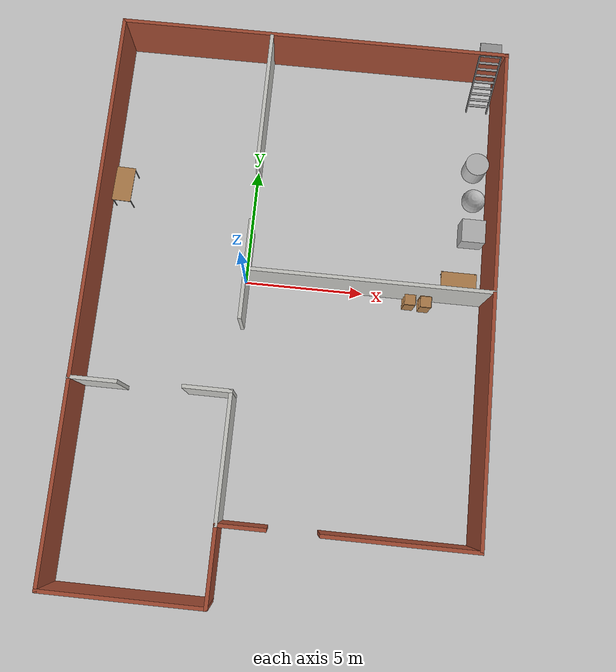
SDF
<sdf version="1.6">
 <world name="default">
  <model name="ground_plane">
   <static>1</static>
   <link name="link">
    <collision name="collision">
     <geometry><plane><normal>0 0 1</normal><size>100 100</size></plane></geometry>
     <surface><friction><ode><mu>100</mu><mu2>50</mu2></ode></friction></surface>
    </collision>
    <visual name="visual">
     <cast_shadows>0</cast_shadows>
     <geometry><plane><normal>0 0 1</normal><size>100 100</size></plane></geometry>
     <material>
      <script><uri>file://media/materials/scripts/gazebo.material</uri><name>Gazebo/Grey</name></script>
     </material>
    </visual>
   </link>
  </model>
  <model name="Building">
   <pose>1.88689 -1.28718 0 0 -0 0</pose>
   <link name="Wall_30">
    <collision name="Wall_30_Collision">
     <geometry><box><size>10.15 0.15 2.5</size></box></geometry>
     <pose>0 0 1.25 0 -0 0</pose>
    </collision>
    <visual name="Wall_30_Visual">
     <pose>0 0 1.25 0 -0 0</pose>
     <geometry><box><size>10.15 0.15 2.5</size></box></geometry>
     <material>
      <script><uri>file://media/materials/scripts/gazebo.material</uri><name>Gazebo/CeilingTiled</name></script>
      <ambient>0.203922 0.396078 0.643137 1</ambient>
     </material>
     <meta><layer>0</layer></meta>
    </visual>
    <pose>3.18412 1.325 0 0 -0 0</pose>
   </link>
   <link name="Wall_34">
    <collision name="Wall_34_Collision">
     <geometry><box><size>10.15 0.15 2.5</size></box></geometry>
     <pose>0 0 1.25 0 -0 0</pose>
    </collision>
    <visual name="Wall_34_Visual">
     <pose>0 0 1.25 0 -0 0</pose>
     <geometry><box><size>10.15 0.15 2.5</size></box></geometry>
     <material>
      <script><uri>file://media/materials/scripts/gazebo.material</uri><name>Gazebo/Bricks</name></script>
      <ambient>1 1 1 1</ambient>
     </material>
     <meta><layer>0</layer></meta>
    </visual>
    <pose>8.18412 -3.675 0 0 -0 -1.5708</pose>
   </link>
   <link name="Wall_36">
    <collision name="Wall_36_Collision">
     <geometry><box><size>6.15 0.15 2.5</size></box></geometry>
     <pose>0 0 1.25 0 -0 0</pose>
    </collision>
    <visual name="Wall_36_Visual">
     <pose>0 0 1.25 0 -0 0</pose>
     <geometry><box><size>6.15 0.15 2.5</size></box></geometry>
     <material>
      <script><uri>file://media/materials/scripts/gazebo.material</uri><name>Gazebo/Bricks</name></script>
      <ambient>1 1 1 1</ambient>
     </material>
     <meta><layer>0</layer></meta>
    </visual>
    <pose>5.18412 -8.675 0 0 -0 3.14159</pose>
   </link>
   <link name="Wall_38">
    <collision name="Wall_38_Collision">
     <geometry><box><size>5.2029 0.15 2.5</size></box></geometry>
     <pose>0 0 1.25 0 -0 0</pose>
    </collision>
    <visual name="Wall_38_Visual">
     <pose>0 0 1.25 0 -0 0</pose>
     <geometry><box><size>5.2029 0.15 2.5</size></box></geometry>
     <material>
      <script><uri>file://media/materials/scripts/gazebo.material</uri><name>Gazebo/CeilingTiled</name></script>
      <ambient>0.203922 0.396078 0.643137 1</ambient>
     </material>
     <meta><layer>0</layer></meta>
    </visual>
    <pose>-1.81588 -6.14855 0 0 -0 1.5708</pose>
   </link>
   <link name="Wall_40">
    <collision name="Wall_40_Collision">
     <geometry><box><size>2 0.15 2.5</size></box></geometry>
     <pose>0 0 1.25 0 -0 0</pose>
    </collision>
    <visual name="Wall_40_Visual">
     <pose>0 0 1.25 0 -0 0</pose>
     <geometry><box><size>2 0.15 2.5</size></box></geometry>
     <material>
      <script><uri>file://media/materials/scripts/gazebo.material</uri><name>Gazebo/Bricks</name></script>
      <ambient>1 1 1 1</ambient>
     </material>
     <meta><layer>0</layer></meta>
    </visual>
    <pose>-0.890877 -8.675 0 0 -0 0</pose>
   </link>
   <link name="Wall_42">
    <collision name="Wall_42_Collision">
     <geometry><box><size>3.15 0.15 2.5</size></box></geometry>
     <pose>0 0 1.25 0 -0 0</pose>
    </collision>
    <visual name="Wall_42_Visual">
     <pose>0 0 1.25 0 -0 0</pose>
     <geometry><box><size>3.15 0.15 2.5</size></box></geometry>
     <material>
      <script><uri>file://media/materials/scripts/gazebo.material</uri><name>Gazebo/Bricks</name></script>
      <ambient>1 1 1 1</ambient>
     </material>
     <meta><layer>0</layer></meta>
    </visual>
    <pose>-1.81588 -10.175 0 0 -0 -1.5708</pose>
   </link>
   <link name="Wall_44">
    <collision name="Wall_44_Collision">
     <geometry><box><size>6.5 0.15 2.5</size></box></geometry>
     <pose>0 0 1.25 0 -0 0</pose>
    </collision>
    <visual name="Wall_44_Visual">
     <pose>0 0 1.25 0 -0 0</pose>
     <geometry><box><size>6.5 0.15 2.5</size></box></geometry>
     <material>
      <script><uri>file://media/materials/scripts/gazebo.material</uri><name>Gazebo/Bricks</name></script>
      <ambient>1 1 1 1</ambient>
     </material>
     <meta><layer>0</layer></meta>
    </visual>
    <pose>-4.99088 -11.675 0 0 -0 3.14159</pose>
   </link>
   <link name="Wall_45">
    <collision name="Wall_45_Collision">
     <geometry><box><size>23.5 0.15 2.5</size></box></geometry>
     <pose>0 0 1.25 0 -0 0</pose>
    </collision>
    <visual name="Wall_45_Visual">
     <pose>0 0 1.25 0 -0 0</pose>
     <geometry><box><size>23.5 0.15 2.5</size></box></geometry>
     <material>
      <script><uri>file://media/materials/scripts/gazebo.material</uri><name>Gazebo/Bricks</name></script>
      <ambient>1 1 1 1</ambient>
     </material>
     <meta><layer>0</layer></meta>
    </visual>
    <pose>-8.16588 0 0 0 -0 1.5708</pose>
   </link>
   <link name="Wall_47">
    <collision name="Wall_47_Collision">
     <geometry><box><size>2.15 0.15 2.5</size></box></geometry>
     <pose>0 0 1.25 0 -0 0</pose>
    </collision>
    <visual name="Wall_47_Visual">
     <pose>0 0 1.25 0 -0 0</pose>
     <geometry><box><size>2.15 0.15 2.5</size></box></geometry>
     <material>
      <script><uri>file://media/materials/scripts/gazebo.material</uri><name>Gazebo/CeilingTiled</name></script>
      <ambient>0.203922 0.396078 0.643137 1</ambient>
     </material>
     <meta><layer>0</layer></meta>
    </visual>
    <pose>-1.81588 0.325 0 0 -0 1.5708</pose>
   </link>
   <link name="Wall_49">
    <collision name="Wall_49_Collision">
     <geometry><box><size>2 0.15 2.5</size></box></geometry>
     <pose>0 0 1.25 0 -0 0</pose>
    </collision>
    <visual name="Wall_49_Visual">
     <pose>0 0 1.25 0 -0 0</pose>
     <geometry><box><size>2 0.15 2.5</size></box></geometry>
     <material>
      <script><uri>file://media/materials/scripts/gazebo.material</uri><name>Gazebo/CeilingTiled</name></script>
      <ambient>0.203922 0.396078 0.643137 1</ambient>
     </material>
     <meta><layer>0</layer></meta>
    </visual>
    <pose>-7.25912 -3.70088 0 0 -0 0</pose>
   </link>
   <link name="Wall_51">
    <collision name="Wall_51_Collision">
     <geometry><box><size>2 0.15 2.5</size></box></geometry>
     <pose>0 0 1.25 0 -0 0</pose>
    </collision>
    <visual name="Wall_51_Visual">
     <pose>0 0 1.25 0 -0 0</pose>
     <geometry><box><size>2 0.15 2.5</size></box></geometry>
     <material>
      <script><uri>file://media/materials/scripts/gazebo.material</uri><name>Gazebo/CeilingTiled</name></script>
      <ambient>0.203922 0.396078 0.643137 1</ambient>
     </material>
     <meta><layer>0</layer></meta>
    </visual>
    <pose>-2.74088 -3.6221 0 0 -0 3.14159</pose>
   </link>
   <link name="Wall_53">
    <collision name="Wall_53_Collision">
     <geometry><box><size>2.15 0.15 2.5</size></box></geometry>
     <pose>0 0 1.25 0 -0 0</pose>
    </collision>
    <visual name="Wall_53_Visual">
     <pose>0 0 1.25 0 -0 0</pose>
     <geometry><box><size>2.15 0.15 2.5</size></box></geometry>
     <material>
      <script><uri>file://media/materials/scripts/gazebo.material</uri><name>Gazebo/CeilingTiled</name></script>
      <ambient>0.203922 0.396078 0.643137 1</ambient>
     </material>
     <meta><layer>0</layer></meta>
    </visual>
    <pose>-1.81588 2.325 0 0 -0 1.5708</pose>
   </link>
   <link name="Wall_55">
    <collision name="Wall_55_Collision">
     <geometry><box><size>16.5 0.15 2.5</size></box></geometry>
     <pose>0 0 1.25 0 -0 0</pose>
    </collision>
    <visual name="Wall_55_Visual">
     <pose>0 0 1.25 0 -0 0</pose>
     <geometry><box><size>16.5 0.15 2.5</size></box></geometry>
     <material>
      <script><uri>file://media/materials/scripts/gazebo.material</uri><name>Gazebo/Bricks</name></script>
      <ambient>1 1 1 1</ambient>
     </material>
     <meta><layer>0</layer></meta>
    </visual>
    <pose>0.009123 11.675 0 0 -0 0</pose>
   </link>
   <link name="Wall_57">
    <collision name="Wall_57_Collision">
     <geometry><box><size>10.5 0.15 2.5</size></box></geometry>
     <pose>0 0 1.25 0 -0 0</pose>
    </collision>
    <visual name="Wall_57_Visual">
     <pose>0 0 1.25 0 -0 0</pose>
     <geometry><box><size>10.5 0.15 2.5</size></box></geometry>
     <material>
      <script><uri>file://media/materials/scripts/gazebo.material</uri><name>Gazebo/Bricks</name></script>
      <ambient>1 1 1 1</ambient>
     </material>
     <meta><layer>0</layer></meta>
    </visual>
    <pose>8.18412 6.5 0 0 -0 1.5708</pose>
   </link>
   <link name="Wall_59">
    <collision name="Wall_59_Collision">
     <geometry><box><size>5.9 0.15 2.5</size></box></geometry>
     <pose>0 0 1.25 0 -0 0</pose>
    </collision>
    <visual name="Wall_59_Visual">
     <pose>0 0 1.25 0 -0 0</pose>
     <geometry><box><size>5.9 0.15 2.5</size></box></geometry>
     <material>
      <script><uri>file://media/materials/scripts/gazebo.material</uri><name>Gazebo/CeilingTiled</name></script>
      <ambient>0.203922 0.396078 0.643137 1</ambient>
     </material>
     <meta><layer>0</layer></meta>
    </visual>
    <pose>-1.81588 8.7 0 0 -0 -1.5708</pose>
   </link>
   <static>1</static>
  </model>
  <model name="ladder_60deg_0rails">
   <static>1</static>
   <link name="step0">
    <pose>0 0.15396 0.266667 0 -0 0</pose>
    <inertial>
     <mass>9.75482</mass>
     <inertia>
      <ixx>0.00957124</ixx>
      <iyy>0.65963</iyy>
      <izz>0.666842</izz>
      <ixy>0</ixy>
      <ixz>0</ixz>
      <iyz>0</iyz>
     </inertia>
    </inertial>
    <collision name="collision"><geometry><box><size>0.9 0.1016 0.0381</size></box></geometry></collision>
    <visual name="visual">
     <geometry><box><size>0.9 0.1016 0.0381</size></box></geometry>
     <material>
      <script><uri>file://media/materials/scripts/gazebo.material</uri><name>Gazebo/Grey</name></script>
     </material>
    </visual>
   </link>
   <link name="step1">
    <pose>0 0.30792 0.533333 0 -0 0</pose>
    <inertial>
     <mass>9.75482</mass>
     <inertia>
      <ixx>0.00957124</ixx>
      <iyy>0.65963</iyy>
      <izz>0.666842</izz>
      <ixy>0</ixy>
      <ixz>0</ixz>
      <iyz>0</iyz>
     </inertia>
    </inertial>
    <collision name="collision"><geometry><box><size>0.9 0.1016 0.0381</size></box></geometry></collision>
    <visual name="visual">
     <geometry><box><size>0.9 0.1016 0.0381</size></box></geometry>
     <material>
      <script><uri>file://media/materials/scripts/gazebo.material</uri><name>Gazebo/Grey</name></script>
     </material>
    </visual>
   </link>
   <link name="step2">
    <pose>0 0.46188 0.8 0 -0 0</pose>
    <inertial>
     <mass>9.75482</mass>
     <inertia>
      <ixx>0.00957124</ixx>
      <iyy>0.65963</iyy>
      <izz>0.666842</izz>
      <ixy>0</ixy>
      <ixz>0</ixz>
      <iyz>0</iyz>
     </inertia>
    </inertial>
    <collision name="collision"><geometry><box><size>0.9 0.1016 0.0381</size></box></geometry></collision>
    <visual name="visual">
     <geometry><box><size>0.9 0.1016 0.0381</size></box></geometry>
     <material>
      <script><uri>file://media/materials/scripts/gazebo.material</uri><name>Gazebo/Grey</name></script>
     </material>
    </visual>
   </link>
   <link name="step3">
    <pose>0 0.61584 1.06667 0 -0 0</pose>
    <inertial>
     <mass>9.75482</mass>
     <inertia>
      <ixx>0.00957124</ixx>
      <iyy>0.65963</iyy>
      <izz>0.666842</izz>
      <ixy>0</ixy>
      <ixz>0</ixz>
      <iyz>0</iyz>
     </inertia>
    </inertial>
    <collision name="collision"><geometry><box><size>0.9 0.1016 0.0381</size></box></geometry></collision>
    <visual name="visual">
     <geometry><box><size>0.9 0.1016 0.0381</size></box></geometry>
     <material>
      <script><uri>file://media/materials/scripts/gazebo.material</uri><name>Gazebo/Grey</name></script>
     </material>
    </visual>
   </link>
   <link name="step4">
    <pose>0 0.7698 1.33333 0 -0 0</pose>
    <inertial>
     <mass>9.75482</mass>
     <inertia>
      <ixx>0.00957124</ixx>
      <iyy>0.65963</iyy>
      <izz>0.666842</izz>
      <ixy>0</ixy>
      <ixz>0</ixz>
      <iyz>0</iyz>
     </inertia>
    </inertial>
    <collision name="collision"><geometry><box><size>0.9 0.1016 0.0381</size></box></geometry></collision>
    <visual name="visual">
     <geometry><box><size>0.9 0.1016 0.0381</size></box></geometry>
     <material>
      <script><uri>file://media/materials/scripts/gazebo.material</uri><name>Gazebo/Grey</name></script>
     </material>
    </visual>
   </link>
   <link name="step5">
    <pose>0 0.92376 1.6 0 -0 0</pose>
    <inertial>
     <mass>9.75482</mass>
     <inertia>
      <ixx>0.00957124</ixx>
      <iyy>0.65963</iyy>
      <izz>0.666842</izz>
      <ixy>0</ixy>
      <ixz>0</ixz>
      <iyz>0</iyz>
     </inertia>
    </inertial>
    <collision name="collision"><geometry><box><size>0.9 0.1016 0.0381</size></box></geometry></collision>
    <visual name="visual">
     <geometry><box><size>0.9 0.1016 0.0381</size></box></geometry>
     <material>
      <script><uri>file://media/materials/scripts/gazebo.material</uri><name>Gazebo/Grey</name></script>
     </material>
    </visual>
   </link>
   <link name="step6">
    <pose>0 1.07772 1.86667 0 -0 0</pose>
    <inertial>
     <mass>9.75482</mass>
     <inertia>
      <ixx>0.00957124</ixx>
      <iyy>0.65963</iyy>
      <izz>0.666842</izz>
      <ixy>0</ixy>
      <ixz>0</ixz>
      <iyz>0</iyz>
     </inertia>
    </inertial>
    <collision name="collision"><geometry><box><size>0.9 0.1016 0.0381</size></box></geometry></collision>
    <visual name="visual">
     <geometry><box><size>0.9 0.1016 0.0381</size></box></geometry>
     <material>
      <script><uri>file://media/materials/scripts/gazebo.material</uri><name>Gazebo/Grey</name></script>
     </material>
    </visual>
   </link>
   <link name="step7">
    <pose>0 1.23168 2.13333 0 -0 0</pose>
    <inertial>
     <mass>9.75482</mass>
     <inertia>
      <ixx>0.00957124</ixx>
      <iyy>0.65963</iyy>
      <izz>0.666842</izz>
      <ixy>0</ixy>
      <ixz>0</ixz>
      <iyz>0</iyz>
     </inertia>
    </inertial>
    <collision name="collision"><geometry><box><size>0.9 0.1016 0.0381</size></box></geometry></collision>
    <visual name="visual">
     <geometry><box><size>0.9 0.1016 0.0381</size></box></geometry>
     <material>
      <script><uri>file://media/materials/scripts/gazebo.material</uri><name>Gazebo/Grey</name></script>
     </material>
    </visual>
   </link>
   <link name="landing">
    <pose>0 1.68564 2.4 0 -0 0</pose>
    <inertial>
     <mass>57.6072</mass>
     <inertia><ixx>1.73518</ixx><iyy>3.89545</iyy><izz>5.6167</izz><ixy>0</ixy><ixz>0</ixz><iyz>0</iyz></inertia>
    </inertial>
    <collision name="collision"><geometry><box><size>0.9 0.6 0.1016</size></box></geometry></collision>
    <visual name="visual">
     <geometry><box><size>0.9 0.6 0.1016</size></box></geometry>
     <material>
      <script><uri>file://media/materials/scripts/gazebo.material</uri><name>Gazebo/Grey</name></script>
     </material>
    </visual>
   </link>
   <link name="left_side_wall">
    <pose>-0.45 0.69282 1.2 1.0472 -0 0</pose>
    <collision name="collision"><geometry><box><size>0.0508 2.85128 0.13</size></box></geometry></collision>
    <visual name="visual">
     <geometry><box><size>0.0508 2.85128 0.13</size></box></geometry>
     <material>
      <script><uri>file://media/materials/scripts/gazebo.material</uri><name>Gazebo/Grey</name></script>
     </material>
    </visual>
   </link>
   <link name="right_side_wall">
    <pose>0.45 0.69282 1.2 1.0472 -0 0</pose>
    <collision name="collision"><geometry><box><size>0.0508 2.85128 0.13</size></box></geometry></collision>
    <visual name="visual">
     <geometry><box><size>0.0508 2.85128 0.13</size></box></geometry>
     <material>
      <script><uri>file://media/materials/scripts/gazebo.material</uri><name>Gazebo/Grey</name></script>
     </material>
    </visual>
   </link>
   <pose>9.39979 8.90239 0 0 -0 0</pose>
  </model>
  <model name="table">
   <static>1</static>
   <link name="link">
    <collision name="surface">
     <pose>0 0 1 0 -0 0</pose>
     <geometry><box><size>1.5 0.8 0.03</size></box></geometry>
     <surface><friction><ode><mu>0.6</mu><mu2>0.6</mu2></ode></friction></surface>
    </collision>
    <visual name="visual1">
     <pose>0 0 1 0 -0 0</pose>
     <geometry><box><size>1.5 0.8 0.03</size></box></geometry>
     <material>
      <script><uri>file://media/materials/scripts/gazebo.material</uri><name>Gazebo/Wood</name></script>
     </material>
    </visual>
    <collision name="front_left_leg">
     <pose>0.68 0.38 0.5 0 -0 0</pose>
     <geometry><cylinder><radius>0.02</radius><length>1</length></cylinder></geometry>
    </collision>
    <visual name="front_left_leg">
     <pose>0.68 0.38 0.5 0 -0 0</pose>
     <geometry><cylinder><radius>0.02</radius><length>1</length></cylinder></geometry>
     <material>
      <script><uri>file://media/materials/scripts/gazebo.material</uri><name>Gazebo/Grey</name></script>
     </material>
    </visual>
    <collision name="front_right_leg">
     <pose>0.68 -0.38 0.5 0 -0 0</pose>
     <geometry><cylinder><radius>0.02</radius><length>1</length></cylinder></geometry>
    </collision>
    <visual name="front_right_leg">
     <pose>0.68 -0.38 0.5 0 -0 0</pose>
     <geometry><cylinder><radius>0.02</radius><length>1</length></cylinder></geometry>
     <material>
      <script><uri>file://media/materials/scripts/gazebo.material</uri><name>Gazebo/Grey</name></script>
     </material>
    </visual>
    <collision name="back_right_leg">
     <pose>-0.68 -0.38 0.5 0 -0 0</pose>
     <geometry><cylinder><radius>0.02</radius><length>1</length></cylinder></geometry>
    </collision>
    <visual name="back_right_leg">
     <pose>-0.68 -0.38 0.5 0 -0 0</pose>
     <geometry><cylinder><radius>0.02</radius><length>1</length></cylinder></geometry>
     <material>
      <script><uri>file://media/materials/scripts/gazebo.material</uri><name>Gazebo/Grey</name></script>
     </material>
    </visual>
    <collision name="back_left_leg">
     <pose>-0.68 0.38 0.5 0 -0 0</pose>
     <geometry><cylinder><radius>0.02</radius><length>1</length></cylinder></geometry>
    </collision>
    <visual name="back_left_leg">
     <pose>-0.68 0.38 0.5 0 -0 0</pose>
     <geometry><cylinder><radius>0.02</radius><length>1</length></cylinder></geometry>
     <material>
      <script><uri>file://media/materials/scripts/gazebo.material</uri><name>Gazebo/Grey</name></script>
     </material>
    </visual>
   </link>
   <pose>-5.62223 3.56497 0 0 0 -1.598</pose>
  </model>
  <model name="cabinet">
   <static>1</static>
   <link name="cabinet_bottom_plate">
    <inertial>
     <pose>0 0 -1 0 -0 0</pose>
     <inertia><ixx>2.05</ixx><ixy>0</ixy><ixz>0</ixz><iyy>2.05</iyy><iyz>0</iyz><izz>2.05</izz></inertia>
     <mass>25</mass>
    </inertial>
    <collision name="cabinet_bottom_plate_geom">
     <pose>0 0 0.01 0 -0 0</pose>
     <geometry><box><size>0.45 0.45 0.02</size></box></geometry>
    </collision>
    <visual name="cabinet_bottom_plate_geom_visual">
     <pose>0 0 0.01 0 -0 0</pose>
     <geometry><box><size>0.45 0.45 0.02</size></box></geometry>
     <material>
      <script><uri>file://media/materials/scripts/gazebo.material</uri><name>Gazebo/Wood</name></script>
     </material>
    </visual>
    <collision name="cabinet_bottom_plate_geom_cabinet_back_plate">
     <pose>0.235 0 0.51 0 -0 0</pose>
     <geometry><box><size>0.02 0.45 1.02</size></box></geometry>
    </collision>
    <visual name="cabinet_bottom_plate_geom_cabinet_back_plate_visual">
     <pose>0.235 0 0.51 0 -0 0</pose>
     <geometry><box><size>0.02 0.45 1.02</size></box></geometry>
     <material>
      <script><uri>file://media/materials/scripts/gazebo.material</uri><name>Gazebo/Wood</name></script>
     </material>
    </visual>
    <collision name="cabinet_bottom_plate_geom_cabinet_left_plate">
     <pose>0 0.235 0.51 0 -0 0</pose>
     <geometry><box><size>0.45 0.02 1.02</size></box></geometry>
    </collision>
    <visual name="cabinet_bottom_plate_geom_cabinet_left_plate_visual">
     <pose>0 0.235 0.51 0 -0 0</pose>
     <geometry><box><size>0.45 0.02 1.02</size></box></geometry>
     <material>
      <script><uri>file://media/materials/scripts/gazebo.material</uri><name>Gazebo/Wood</name></script>
     </material>
    </visual>
    <collision name="cabinet_bottom_plate_geom_cabinet_middle_plate">
     <pose>0 0 0.51 0 -0 0</pose>
     <geometry><box><size>0.45 0.45 0.02</size></box></geometry>
    </collision>
    <visual name="cabinet_bottom_plate_geom_cabinet_middle_plate_visual">
     <pose>0 0 0.51 0 -0 0</pose>
     <geometry><box><size>0.45 0.45 0.02</size></box></geometry>
     <material>
      <script><uri>file://media/materials/scripts/gazebo.material</uri><name>Gazebo/Wood</name></script>
     </material>
    </visual>
    <collision name="cabinet_bottom_plate_geom_cabinet_right_plate">
     <pose>0 -0.235 0.51 0 -0 0</pose>
     <geometry><box><size>0.45 0.02 1.02</size></box></geometry>
    </collision>
    <visual name="cabinet_bottom_plate_geom_cabinet_right_plate_visual">
     <pose>0 -0.235 0.51 0 -0 0</pose>
     <geometry><box><size>0.45 0.02 1.02</size></box></geometry>
     <material>
      <script><uri>file://media/materials/scripts/gazebo.material</uri><name>Gazebo/Wood</name></script>
     </material>
    </visual>
    <collision name="cabinet_bottom_plate_geom_cabinet_top_plate">
     <pose>0 0 1.01 0 -0 0</pose>
     <geometry><box><size>0.45 0.45 0.02</size></box></geometry>
    </collision>
    <visual name="cabinet_bottom_plate_geom_cabinet_top_plate_visual">
     <pose>0 0 1.01 0 -0 0</pose>
     <geometry><box><size>0.45 0.45 0.02</size></box></geometry>
     <material>
      <script><uri>file://media/materials/scripts/gazebo.material</uri><name>Gazebo/Wood</name></script>
     </material>
    </visual>
   </link>
   <pose>7.57445 -0.283027 0 0 -0 0</pose>
  </model>
  <model name="minitable">
   <link name="link">
    <inertial>
     <mass>1</mass>
     <inertia><ixx>1</ixx><ixy>0</ixy><ixz>0</ixz><iyy>1</iyy><iyz>0</iyz><izz>1</izz></inertia>
    </inertial>
    <visual name="visual1">
     <pose>0 0 0.5 0 -0 0</pose>
     <geometry><box><size>1.5 0.8 0.03</size></box></geometry>
     <material>
      <script><uri>file://media/materials/scripts/gazebo.material</uri><name>Gazebo/Wood</name></script>
      <shader type="pixel"><normal_map>__default__</normal_map></shader>
      <ambient>1 1 1 1</ambient>
      <diffuse>1 1 1 1</diffuse>
      <specular>0.2 0.2 0.2 1</specular>
      <emissive>0 0 0 1</emissive>
     </material>
    </visual>
    <visual name="front_left_leg">
     <pose>0.68 0.38 0.05 0 -0 0</pose>
     <geometry><cylinder><radius>0.02</radius><length>1</length></cylinder></geometry>
     <material>
      <script><uri>file://media/materials/scripts/gazebo.material</uri><name>Gazebo/Grey</name></script>
      <shader type="pixel"><normal_map>__default__</normal_map></shader>
      <ambient>0.3 0.3 0.3 1</ambient>
      <diffuse>0.7 0.7 0.7 1</diffuse>
      <specular>0.01 0.01 0.01 1</specular>
      <emissive>0 0 0 1</emissive>
     </material>
    </visual>
    <visual name="front_right_leg">
     <pose>0.68 -0.38 0.05 0 -0 0</pose>
     <geometry><cylinder><radius>0.02</radius><length>1</length></cylinder></geometry>
     <material>
      <script><uri>file://media/materials/scripts/gazebo.material</uri><name>Gazebo/Grey</name></script>
      <shader type="pixel"><normal_map>__default__</normal_map></shader>
      <ambient>0.3 0.3 0.3 1</ambient>
      <diffuse>0.7 0.7 0.7 1</diffuse>
      <specular>0.01 0.01 0.01 1</specular>
      <emissive>0 0 0 1</emissive>
     </material>
    </visual>
    <visual name="back_right_leg">
     <pose>-0.68 -0.38 0.05 0 -0 0</pose>
     <geometry><cylinder><radius>0.02</radius><length>1</length></cylinder></geometry>
     <material>
      <script><uri>file://media/materials/scripts/gazebo.material</uri><name>Gazebo/Grey</name></script>
      <shader type="pixel"><normal_map>__default__</normal_map></shader>
      <ambient>0.3 0.3 0.3 1</ambient>
      <diffuse>0.7 0.7 0.7 1</diffuse>
      <specular>0.01 0.01 0.01 1</specular>
      <emissive>0 0 0 1</emissive>
     </material>
    </visual>
    <visual name="back_left_leg">
     <pose>-0.68 0.38 0.05 0 -0 0</pose>
     <geometry><cylinder><radius>0.02</radius><length>1</length></cylinder></geometry>
     <material>
      <script><uri>file://media/materials/scripts/gazebo.material</uri><name>Gazebo/Grey</name></script>
      <shader type="pixel"><normal_map>__default__</normal_map></shader>
      <ambient>0.3 0.3 0.3 1</ambient>
      <diffuse>0.7 0.7 0.7 1</diffuse>
      <specular>0.01 0.01 0.01 1</specular>
      <emissive>0 0 0 1</emissive>
     </material>
    </visual>
    <collision name="surface">
     <pose>0 0 0.5 0 -0 0</pose>
     <geometry><box><size>1.5 0.8 0.03</size></box></geometry>
     <surface>
      <friction>
       <ode><mu>0.6</mu><mu2>0.6</mu2><fdir1>0 0 0</fdir1><slip1>0</slip1><slip2>0</slip2></ode>
       <torsional>
        <coefficient>1</coefficient>
        <patch_radius>0</patch_radius>
        <surface_radius>0</surface_radius>
        <use_patch_radius>1</use_patch_radius>
        <ode><slip>0</slip></ode>
       </torsional>
      </friction>
      <bounce><restitution_coefficient>0</restitution_coefficient><threshold>1e+06</threshold></bounce>
      <contact>
       <collide_without_contact>0</collide_without_contact>
       <collide_without_contact_bitmask>1</collide_without_contact_bitmask>
       <collide_bitmask>1</collide_bitmask>
       <ode>
        <soft_cfm>0</soft_cfm>
        <soft_erp>0.2</soft_erp>
        <kp>1e+13</kp>
        <kd>1</kd>
        <max_vel>0.01</max_vel>
        <min_depth>0</min_depth>
       </ode>
       <bullet>
        <split_impulse>1</split_impulse>
        <split_impulse_penetration_threshold>-0.01</split_impulse_penetration_threshold>
        <soft_cfm>0</soft_cfm>
        <soft_erp>0.2</soft_erp>
        <kp>1e+13</kp>
        <kd>1</kd>
       </bullet>
      </contact>
     </surface>
    </collision>
    <collision name="front_left_leg">
     <pose>0.68 0.38 0.05 0 -0 0</pose>
     <geometry><cylinder><radius>0.02</radius><length>1</length></cylinder></geometry>
     <surface>
      <friction>
       <ode><mu>1</mu><mu2>1</mu2><fdir1>0 0 0</fdir1><slip1>0</slip1><slip2>0</slip2></ode>
       <torsional>
        <coefficient>1</coefficient>
        <patch_radius>0</patch_radius>
        <surface_radius>0</surface_radius>
        <use_patch_radius>1</use_patch_radius>
        <ode><slip>0</slip></ode>
       </torsional>
      </friction>
      <bounce><restitution_coefficient>0</restitution_coefficient><threshold>1e+06</threshold></bounce>
      <contact>
       <collide_without_contact>0</collide_without_contact>
       <collide_without_contact_bitmask>1</collide_without_contact_bitmask>
       <collide_bitmask>1</collide_bitmask>
       <ode>
        <soft_cfm>0</soft_cfm>
        <soft_erp>0.2</soft_erp>
        <kp>1e+13</kp>
        <kd>1</kd>
        <max_vel>0.01</max_vel>
        <min_depth>0</min_depth>
       </ode>
       <bullet>
        <split_impulse>1</split_impulse>
        <split_impulse_penetration_threshold>-0.01</split_impulse_penetration_threshold>
        <soft_cfm>0</soft_cfm>
        <soft_erp>0.2</soft_erp>
        <kp>1e+13</kp>
        <kd>1</kd>
       </bullet>
      </contact>
     </surface>
    </collision>
    <collision name="front_right_leg">
     <pose>0.68 -0.38 0.05 0 -0 0</pose>
     <geometry><cylinder><radius>0.02</radius><length>1</length></cylinder></geometry>
     <surface>
      <friction>
       <ode><mu>1</mu><mu2>1</mu2><fdir1>0 0 0</fdir1><slip1>0</slip1><slip2>0</slip2></ode>
       <torsional>
        <coefficient>1</coefficient>
        <patch_radius>0</patch_radius>
        <surface_radius>0</surface_radius>
        <use_patch_radius>1</use_patch_radius>
        <ode><slip>0</slip></ode>
       </torsional>
      </friction>
      <bounce><restitution_coefficient>0</restitution_coefficient><threshold>1e+06</threshold></bounce>
      <contact>
       <collide_without_contact>0</collide_without_contact>
       <collide_without_contact_bitmask>1</collide_without_contact_bitmask>
       <collide_bitmask>1</collide_bitmask>
       <ode>
        <soft_cfm>0</soft_cfm>
        <soft_erp>0.2</soft_erp>
        <kp>1e+13</kp>
        <kd>1</kd>
        <max_vel>0.01</max_vel>
        <min_depth>0</min_depth>
       </ode>
       <bullet>
        <split_impulse>1</split_impulse>
        <split_impulse_penetration_threshold>-0.01</split_impulse_penetration_threshold>
        <soft_cfm>0</soft_cfm>
        <soft_erp>0.2</soft_erp>
        <kp>1e+13</kp>
        <kd>1</kd>
       </bullet>
      </contact>
     </surface>
    </collision>
    <collision name="back_right_leg">
     <pose>-0.68 -0.38 0.05 0 -0 0</pose>
     <geometry><cylinder><radius>0.02</radius><length>1</length></cylinder></geometry>
     <surface>
      <friction>
       <ode><mu>1</mu><mu2>1</mu2><fdir1>0 0 0</fdir1><slip1>0</slip1><slip2>0</slip2></ode>
       <torsional>
        <coefficient>1</coefficient>
        <patch_radius>0</patch_radius>
        <surface_radius>0</surface_radius>
        <use_patch_radius>1</use_patch_radius>
        <ode><slip>0</slip></ode>
       </torsional>
      </friction>
      <bounce><restitution_coefficient>0</restitution_coefficient><threshold>1e+06</threshold></bounce>
      <contact>
       <collide_without_contact>0</collide_without_contact>
       <collide_without_contact_bitmask>1</collide_without_contact_bitmask>
       <collide_bitmask>1</collide_bitmask>
       <ode>
        <soft_cfm>0</soft_cfm>
        <soft_erp>0.2</soft_erp>
        <kp>1e+13</kp>
        <kd>1</kd>
        <max_vel>0.01</max_vel>
        <min_depth>0</min_depth>
       </ode>
       <bullet>
        <split_impulse>1</split_impulse>
        <split_impulse_penetration_threshold>-0.01</split_impulse_penetration_threshold>
        <soft_cfm>0</soft_cfm>
        <soft_erp>0.2</soft_erp>
        <kp>1e+13</kp>
        <kd>1</kd>
       </bullet>
      </contact>
     </surface>
    </collision>
    <collision name="back_left_leg">
     <pose>-0.68 0.38 0.05 0 -0 0</pose>
     <geometry><cylinder><radius>0.02</radius><length>1</length></cylinder></geometry>
     <surface>
      <friction>
       <ode><mu>1</mu><mu2>1</mu2><fdir1>0 0 0</fdir1><slip1>0</slip1><slip2>0</slip2></ode>
       <torsional>
        <coefficient>1</coefficient>
        <patch_radius>0</patch_radius>
        <surface_radius>0</surface_radius>
        <use_patch_radius>1</use_patch_radius>
        <ode><slip>0</slip></ode>
       </torsional>
      </friction>
      <bounce><restitution_coefficient>0</restitution_coefficient><threshold>1e+06</threshold></bounce>
      <contact>
       <collide_without_contact>0</collide_without_contact>
       <collide_without_contact_bitmask>1</collide_without_contact_bitmask>
       <collide_bitmask>1</collide_bitmask>
       <ode>
        <soft_cfm>0</soft_cfm>
        <soft_erp>0.2</soft_erp>
        <kp>1e+13</kp>
        <kd>1</kd>
        <max_vel>0.01</max_vel>
        <min_depth>0</min_depth>
       </ode>
       <bullet>
        <split_impulse>1</split_impulse>
        <split_impulse_penetration_threshold>-0.01</split_impulse_penetration_threshold>
        <soft_cfm>0</soft_cfm>
        <soft_erp>0.2</soft_erp>
        <kp>1e+13</kp>
        <kd>1</kd>
       </bullet>
      </contact>
     </surface>
    </collision>
   </link>
   <static>1</static>
   <pose>8.96989 0.826322 0 0 -0 0</pose>
  </model>
  <model name="textured_shapes">
   <pose>9.39171 4.48804 0.5 0 -0 0</pose>
   <link name="box">
    <pose>0 -1.5 0 0 -0 0</pose>
    <collision name="collision"><geometry><box><size>1 1 1</size></box></geometry></collision>
    <visual name="visual">
     <geometry><box><size>1 1 1</size></box></geometry>
     <material>
      <script>
       <uri>model://textured_shapes/materials/scripts</uri>
       <uri>model://textured_shapes/materials/textures</uri>
       <name>TexturedShape/Squares</name>
      </script>
     </material>
    </visual>
    <inertial>
     <inertia><ixx>1</ixx><ixy>0</ixy><ixz>0</ixz><iyy>1</iyy><iyz>0</iyz><izz>1</izz></inertia>
     <mass>1</mass>
    </inertial>
   </link>
   <link name="sphere">
    <collision name="collision"><geometry><sphere><radius>0.5</radius></sphere></geometry></collision>
    <visual name="visual">
     <geometry><sphere><radius>0.5</radius></sphere></geometry>
     <material>
      <script>
       <uri>model://textured_shapes/materials/scripts</uri>
       <uri>model://textured_shapes/materials/textures</uri>
       <name>TexturedShape/Squares</name>
      </script>
     </material>
    </visual>
    <inertial>
     <inertia><ixx>1</ixx><ixy>0</ixy><ixz>0</ixz><iyy>1</iyy><iyz>0</iyz><izz>1</izz></inertia>
     <mass>1</mass>
    </inertial>
   </link>
   <link name="cylinder">
    <pose>0 1.5 0 0 -0 0</pose>
    <collision name="collision">
     <geometry><cylinder><radius>0.5</radius><length>1</length></cylinder></geometry>
    </collision>
    <visual name="visual">
     <geometry><cylinder><radius>0.5</radius><length>1</length></cylinder></geometry>
     <material>
      <script>
       <uri>model://textured_shapes/materials/scripts</uri>
       <uri>model://textured_shapes/materials/textures</uri>
       <name>TexturedShape/Squares</name>
      </script>
     </material>
    </visual>
    <inertial>
     <inertia><ixx>1</ixx><ixy>0</ixy><ixz>0</ixz><iyy>1</iyy><iyz>0</iyz><izz>1</izz></inertia>
     <mass>1</mass>
    </inertial>
   </link>
  </model>
  <model name="cabinet_0">
   <static>1</static>
   <link name="cabinet_bottom_plate">
    <inertial>
     <pose>0 0 -1 0 -0 0</pose>
     <inertia><ixx>2.05</ixx><ixy>0</ixy><ixz>0</ixz><iyy>2.05</iyy><iyz>0</iyz><izz>2.05</izz></inertia>
     <mass>25</mass>
    </inertial>
    <collision name="cabinet_bottom_plate_geom">
     <pose>0 0 0.01 0 -0 0</pose>
     <geometry><box><size>0.45 0.45 0.02</size></box></geometry>
    </collision>
    <visual name="cabinet_bottom_plate_geom_visual">
     <pose>0 0 0.01 0 -0 0</pose>
     <geometry><box><size>0.45 0.45 0.02</size></box></geometry>
     <material>
      <script><uri>file://media/materials/scripts/gazebo.material</uri><name>Gazebo/Wood</name></script>
     </material>
    </visual>
    <collision name="cabinet_bottom_plate_geom_cabinet_back_plate">
     <pose>0.235 0 0.51 0 -0 0</pose>
     <geometry><box><size>0.02 0.45 1.02</size></box></geometry>
    </collision>
    <visual name="cabinet_bottom_plate_geom_cabinet_back_plate_visual">
     <pose>0.235 0 0.51 0 -0 0</pose>
     <geometry><box><size>0.02 0.45 1.02</size></box></geometry>
     <material>
      <script><uri>file://media/materials/scripts/gazebo.material</uri><name>Gazebo/Wood</name></script>
     </material>
    </visual>
    <collision name="cabinet_bottom_plate_geom_cabinet_left_plate">
     <pose>0 0.235 0.51 0 -0 0</pose>
     <geometry><box><size>0.45 0.02 1.02</size></box></geometry>
    </collision>
    <visual name="cabinet_bottom_plate_geom_cabinet_left_plate_visual">
     <pose>0 0.235 0.51 0 -0 0</pose>
     <geometry><box><size>0.45 0.02 1.02</size></box></geometry>
     <material>
      <script><uri>file://media/materials/scripts/gazebo.material</uri><name>Gazebo/Wood</name></script>
     </material>
    </visual>
    <collision name="cabinet_bottom_plate_geom_cabinet_middle_plate">
     <pose>0 0 0.51 0 -0 0</pose>
     <geometry><box><size>0.45 0.45 0.02</size></box></geometry>
    </collision>
    <visual name="cabinet_bottom_plate_geom_cabinet_middle_plate_visual">
     <pose>0 0 0.51 0 -0 0</pose>
     <geometry><box><size>0.45 0.45 0.02</size></box></geometry>
     <material>
      <script><uri>file://media/materials/scripts/gazebo.material</uri><name>Gazebo/Wood</name></script>
     </material>
    </visual>
    <collision name="cabinet_bottom_plate_geom_cabinet_right_plate">
     <pose>0 -0.235 0.51 0 -0 0</pose>
     <geometry><box><size>0.45 0.02 1.02</size></box></geometry>
    </collision>
    <visual name="cabinet_bottom_plate_geom_cabinet_right_plate_visual">
     <pose>0 -0.235 0.51 0 -0 0</pose>
     <geometry><box><size>0.45 0.02 1.02</size></box></geometry>
     <material>
      <script><uri>file://media/materials/scripts/gazebo.material</uri><name>Gazebo/Wood</name></script>
     </material>
    </visual>
    <collision name="cabinet_bottom_plate_geom_cabinet_top_plate">
     <pose>0 0 1.01 0 -0 0</pose>
     <geometry><box><size>0.45 0.45 0.02</size></box></geometry>
    </collision>
    <visual name="cabinet_bottom_plate_geom_cabinet_top_plate_visual">
     <pose>0 0 1.01 0 -0 0</pose>
     <geometry><box><size>0.45 0.45 0.02</size></box></geometry>
     <material>
      <script><uri>file://media/materials/scripts/gazebo.material</uri><name>Gazebo/Wood</name></script>
     </material>
    </visual>
   </link>
   <pose>6.91797 -0.248257 0 0 -0 0</pose>
  </model>
 </world>
</sdf>
